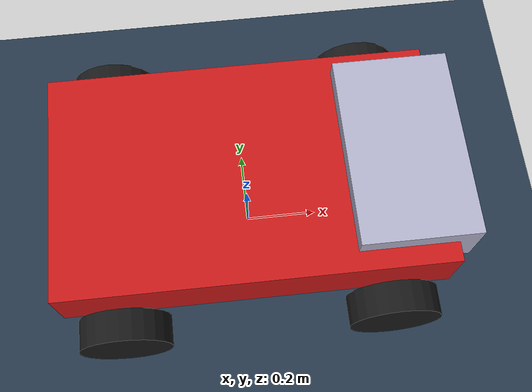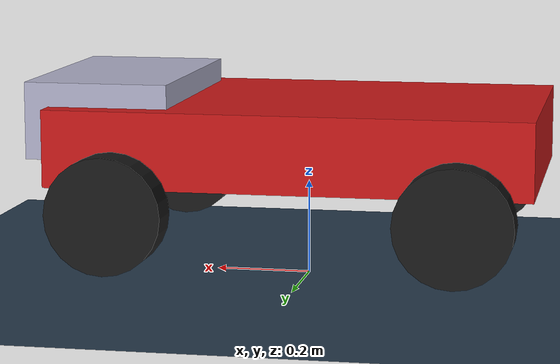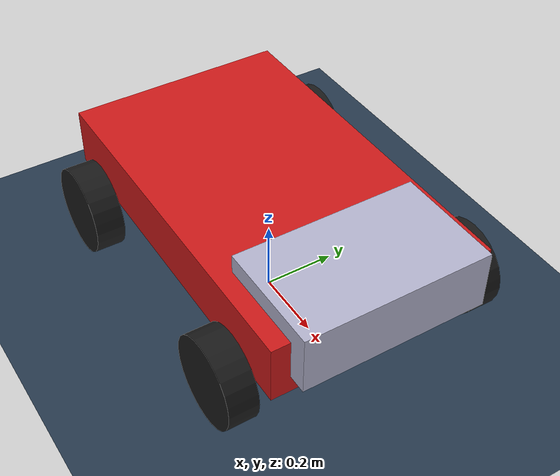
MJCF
<mujoco model="simple_car">
  <compiler angle="radian" autolimits="true"/>

  <option timestep="0.005" gravity="0 0 -9.81" iterations="50" solver="Newton" tolerance="1e-10">
    <flag warmstart="enable"/>
  </option>

  <visual>
    <headlight ambient="0.5 0.5 0.5"/>
  </visual>

  <default>
    <geom condim="4" friction="1.0 0.005 0.0001" solimp="0.9 0.95 0.001" solref="0.02 1"/>
  </default>

  <asset>
    <texture name="grid" type="2d" builtin="checker" width="512" height="512" rgb1="0.2 0.3 0.4" rgb2="0.1 0.15 0.2"/>
    <material name="grid" texture="grid" texrepeat="1 1" texuniform="true" reflectance="0.2"/>
    <material name="chassis" rgba="0.8 0.1 0.1 1"/>
    <material name="wheel" rgba="0.1 0.1 0.1 1"/>
  </asset>

  <worldbody>
    <light pos="0 0 3" dir="0 0 -1" diffuse="0.8 0.8 0.8"/>
    <geom name="floor" size="20 20 0.1" type="plane" material="grid" friction="1.5 0.005 0.0001"/>

    <!-- Car Chassis -->
    <body name="chassis" pos="0 0 0.3">
      <freejoint/>
      <inertial pos="0 0 0" mass="15" diaginertia="1.0 2.0 1.5"/>
      <geom name="chassis_main" type="box" size="0.5 0.3 0.08" rgba="0.8 0.1 0.1 1"/>
      <geom name="chassis_front" type="box" size="0.15 0.25 0.08" pos="0.4 0 0.05" rgba="0.7 0.7 0.8 0.9"/>

      <!-- Front Left Wheel -->
      <body name="front_left_steering" pos="0.35 0.35 -0.08">
        <inertial pos="0 0 0" mass="0.5" diaginertia="0.01 0.01 0.01"/>
        <joint name="front_left_steer" type="hinge" axis="0 0 1" range="-0.5 0.5" damping="5" armature="0.01"/>
        <geom name="steering_left" type="cylinder" size="0.015 0.03" rgba="0.5 0.5 0.5 1"/>
        <body name="front_left_wheel" pos="0 0 -0.04">
          <inertial pos="0 0 0" mass="2" diaginertia="0.02 0.02 0.02"/>
          <joint name="front_left_wheel" type="hinge" axis="0 1 0" damping="0.5" armature="0.01"/>
          <geom name="wheel_fl" type="cylinder" size="0.12 0.04" rgba="0.1 0.1 0.1 1" euler="1.5708 0 0" friction="1.5 0.005 0.0001"/>
        </body>
      </body>

      <!-- Front Right Wheel -->
      <body name="front_right_steering" pos="0.35 -0.35 -0.08">
        <inertial pos="0 0 0" mass="0.5" diaginertia="0.01 0.01 0.01"/>
        <joint name="front_right_steer" type="hinge" axis="0 0 1" range="-0.5 0.5" damping="5" armature="0.01"/>
        <geom name="steering_right" type="cylinder" size="0.015 0.03" rgba="0.5 0.5 0.5 1"/>
        <body name="front_right_wheel" pos="0 0 -0.04">
          <inertial pos="0 0 0" mass="2" diaginertia="0.02 0.02 0.02"/>
          <joint name="front_right_wheel" type="hinge" axis="0 1 0" damping="0.5" armature="0.01"/>
          <geom name="wheel_fr" type="cylinder" size="0.12 0.04" rgba="0.1 0.1 0.1 1" euler="1.5708 0 0" friction="1.5 0.005 0.0001"/>
        </body>
      </body>

      <!-- Rear Left Wheel -->
      <body name="rear_left_wheel" pos="-0.35 0.35 -0.12">
        <inertial pos="0 0 0" mass="2" diaginertia="0.02 0.02 0.02"/>
        <joint name="rear_left_wheel" type="hinge" axis="0 1 0" damping="0.5" armature="0.01"/>
        <geom name="wheel_rl" type="cylinder" size="0.12 0.04" rgba="0.1 0.1 0.1 1" euler="1.5708 0 0" friction="1.5 0.005 0.0001"/>
      </body>

      <!-- Rear Right Wheel -->
      <body name="rear_right_wheel" pos="-0.35 -0.35 -0.12">
        <inertial pos="0 0 0" mass="2" diaginertia="0.02 0.02 0.02"/>
        <joint name="rear_right_wheel" type="hinge" axis="0 1 0" damping="0.5" armature="0.01"/>
        <geom name="wheel_rr" type="cylinder" size="0.12 0.04" rgba="0.1 0.1 0.1 1" euler="1.5708 0 0" friction="1.5 0.005 0.0001"/>
      </body>
    </body>
  </worldbody>

  <actuator>
    <!-- Steering actuators -->
    <position name="steer_left" joint="front_left_steer" kp="50" ctrlrange="-0.5 0.5"/>
    <position name="steer_right" joint="front_right_steer" kp="50" ctrlrange="-0.5 0.5"/>

    <!-- Wheel drive actuators -->
    <velocity name="drive_fl" joint="front_left_wheel" kv="1" ctrlrange="-20 20"/>
    <velocity name="drive_fr" joint="front_right_wheel" kv="1" ctrlrange="-20 20"/>
    <velocity name="drive_rl" joint="rear_left_wheel" kv="1" ctrlrange="-20 20"/>
    <velocity name="drive_rr" joint="rear_right_wheel" kv="1" ctrlrange="-20 20"/>
  </actuator>
</mujoco>
